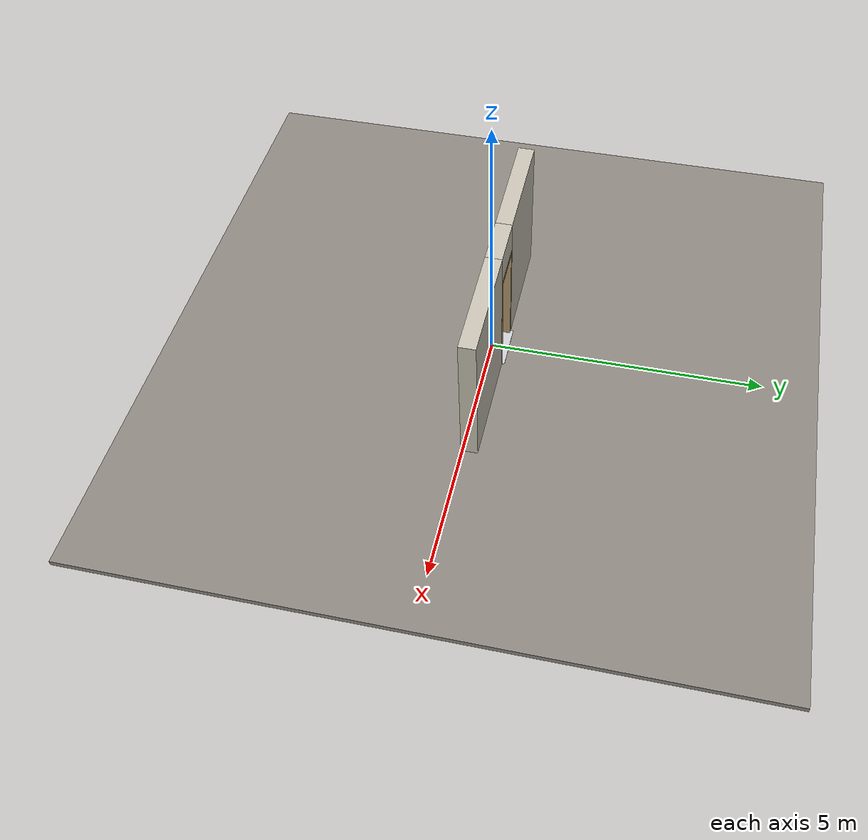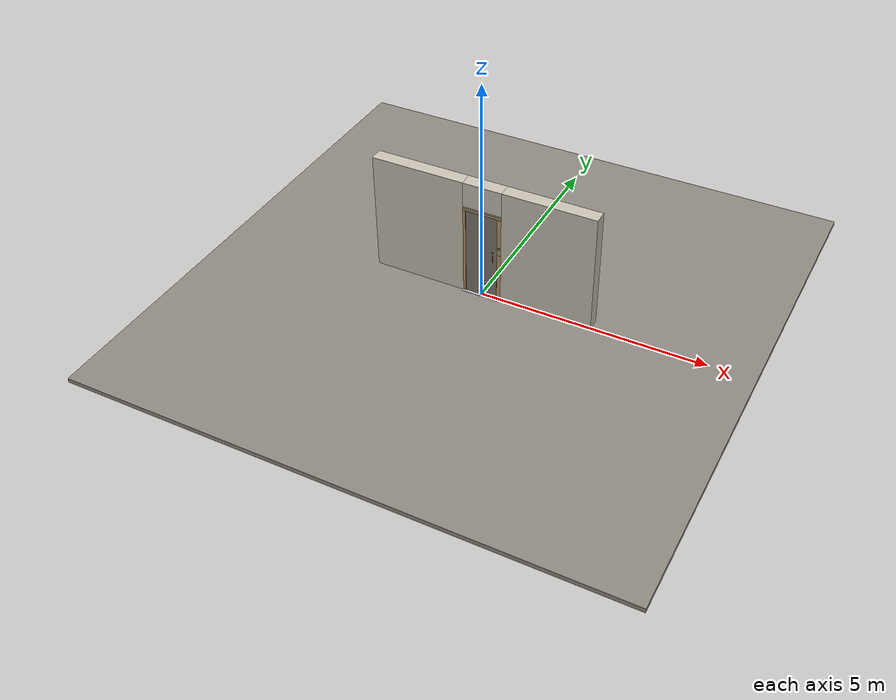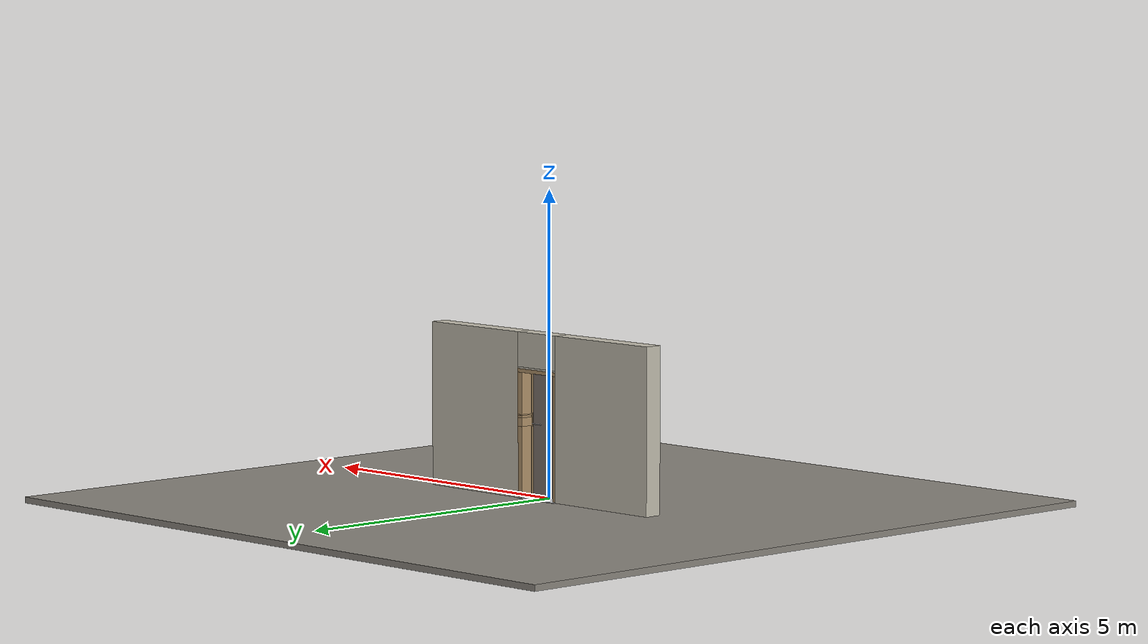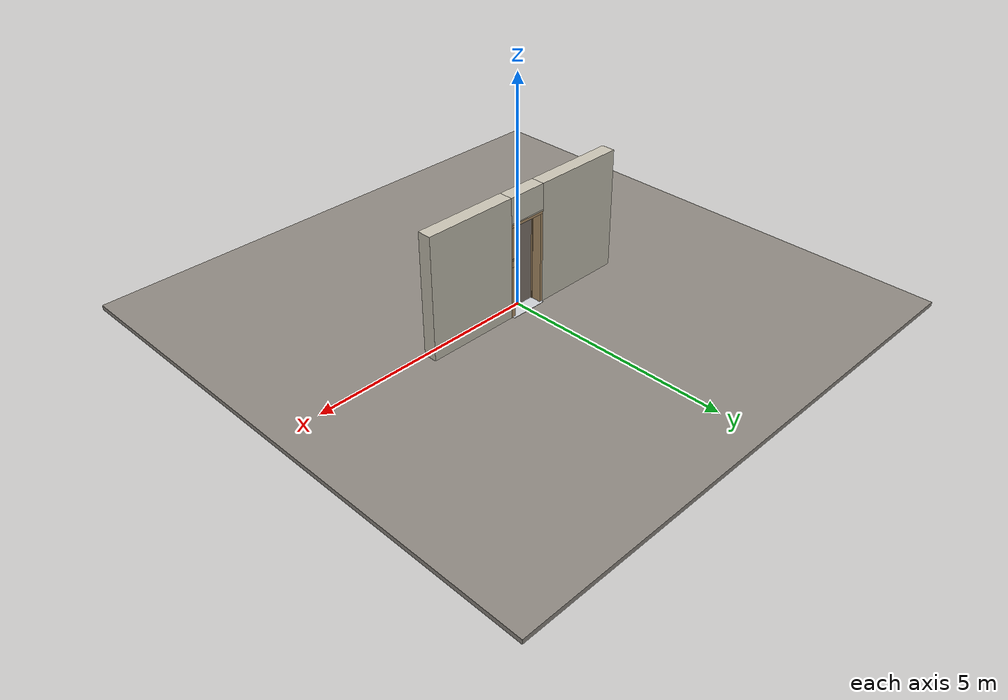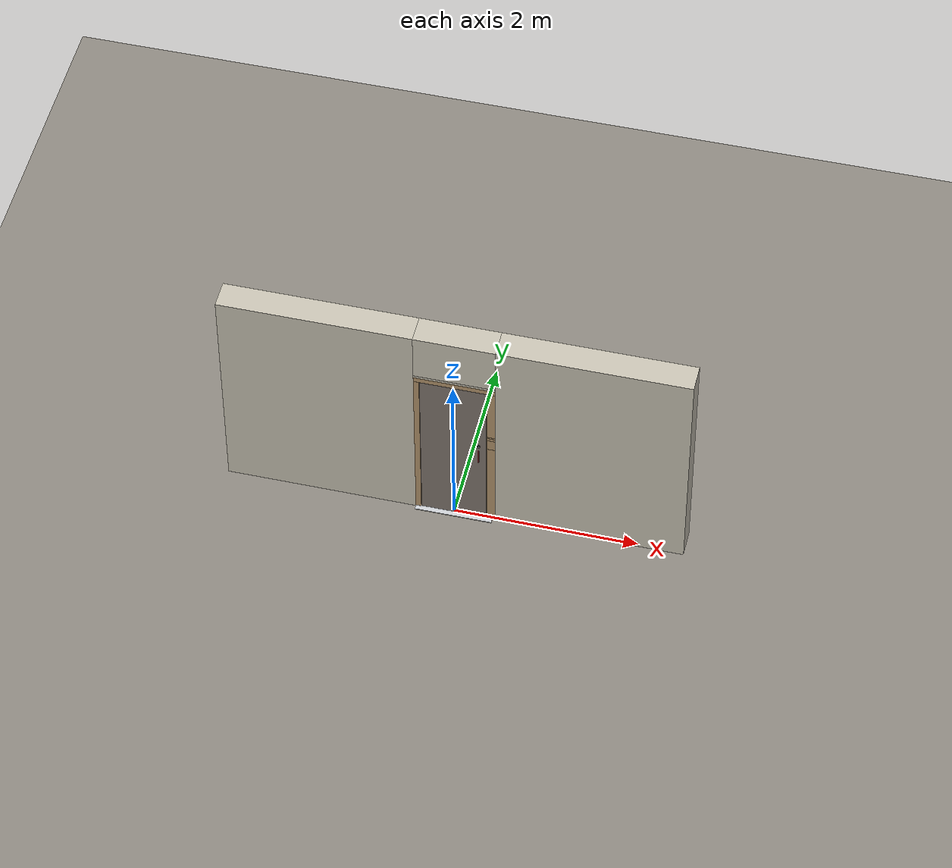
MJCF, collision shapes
<?xml version="1.0" ?>
<mujoco model="db0856_swing_single_minimal">
  <compiler angle="radian" meshdir="../../hardware" texturedir="../../textures" autolimits="true" inertiafromgeom="false"/>
  <option timestep="0.002" integrator="implicitfast" cone="elliptic" impratio="10" noslip_iterations="3">
    <flag multiccd="enable"/>
  </option>
  <size memory="16M"/>
  <default>
    <geom condim="4" solref="0.005 1" solimp="0.95 0.99 0.001"/>
    <joint solreflimit="0.005 1" solimplimit="0.95 0.99 0.001"/>
    <tendon solreflimit="0.005 1"/>
    <equality solref="0.002 1"/>
  </default>
  <visual>
    <headlight ambient="0.4 0.4 0.4" diffuse="0.7 0.7 0.7" specular="0.2 0.2 0.2"/>
    <quality shadowsize="4096"/>
    <map znear="0.01" zfar="60"/>
  </visual>
  <asset>
    <mesh name="thumb_latch_0073ea78ed" file="thumb_latch_0073ea78ed.obj"/>
    <material name="mat_floor" rgba="0.55 0.53 0.5 1" specular="0.2" shininess="0.15" reflectance="0"/>
    <material name="mat_wall" rgba="0.78 0.76 0.7 1" specular="0.2" shininess="0.1" reflectance="0"/>
    <material name="mat_leaf" rgba="0.5 0.46 0.425 1" specular="0.2" shininess="0.15" reflectance="0"/>
    <material name="mat_leaf_brace" rgba="0.45 0.414 0.383 1" specular="0.2" shininess="0.2" reflectance="0"/>
    <material name="mat_hinge" rgba="0.65 0.66 0.68 1" specular="0.74" shininess="0.5" reflectance="0.36"/>
    <material name="mat_op_wrought_iron" rgba="0.08 0.08 0.09 1" specular="0.56" shininess="0.25" reflectance="0.24"/>
    <material name="mat_op_brass" rgba="0.85 0.66 0.3 1" specular="0.8" shininess="0.75" reflectance="0.4"/>
    <material name="mat_frame" rgba="0.7 0.58 0.42 1" specular="0.2" shininess="0.5" reflectance="0"/>
    <material name="mat_seal" rgba="0.1 0.1 0.1 1" specular="0.2" shininess="0.1" reflectance="0"/>
    <material name="mat_threshold" rgba="0.8 0.81 0.83 1" specular="0.8" shininess="0.6" reflectance="0.4"/>
    <material name="mat_wreath" rgba="0.12 0.3 0.12 1" specular="0.2" shininess="0.05" reflectance="0"/>
    <material name="mat_wreath_hook" rgba="0.85 0.66 0.3 1" specular="0.8" shininess="0.75" reflectance="0.4"/>
    <texture name="skybox" type="skybox" builtin="gradient" rgb1="0.6 0.7 0.85" rgb2="0.9 0.92 0.95" width="256" height="256"/>
  </asset>
  <worldbody>
    <light name="sun" pos="1.5 -2.5 4" dir="-0.3 0.5 -0.8" directional="true" diffuse="0.8 0.8 0.8" specular="0.3 0.3 0.3" castshadow="true"/>
    <light name="fill" pos="-1.5 2.5 3" dir="0.3 -0.5 -0.7" directional="true" diffuse="0.35 0.35 0.4" castshadow="false"/>
    <camera name="robot_view" pos="0 -2.421187 1.734312" xyaxes="1 0 0 0 0.26963 0.962964" fovy="52"/>
    <camera name="far_view" pos="0 2.663187 1.734312" xyaxes="-1 0 0 0 -0.26963 0.962964" fovy="52"/>
    <camera name="iso" pos="1.932062 -2.014438 2.141063" xyaxes="0.741536 0.670913 0 -0.242917 0.268487 0.932151" fovy="46"/>
    <camera name="detail_handle" pos="0.4545 -0.857 1.33" xyaxes="0.97561 0.219512 0 -0.070934 0.315262 0.94635" fovy="38"/>
    <geom name="floor" type="box" size="6 6 0.05" pos="0 0 -0.05" material="mat_floor" group="0" contype="1" conaffinity="1" friction="0.8 0.005 0.0001" density="2400"/>
    <geom name="wall_left" type="box" size="1.04025 0.15 1.35" pos="-1.45975 0.121 1.35" material="mat_wall" group="0" contype="1" conaffinity="1" friction="0.6 0.005 0.0001" density="800"/>
    <geom name="wall_right" type="box" size="1.02525 0.15 1.35" pos="1.47475 0.121 1.35" material="mat_wall" group="0" contype="1" conaffinity="1" friction="0.6 0.005 0.0001" density="800"/>
    <geom name="wall_header" type="box" size="0.4345 0.15 0.2825" pos="0.015 0.121 2.4175" material="mat_wall" group="0" contype="1" conaffinity="1" friction="0.6 0.005 0.0001" density="800"/>
    <geom name="jamb_hinge" type="box" size="0.03 0.15 1.0225" pos="-0.3895 0.121 1.0225" material="mat_frame" group="0" contype="1" conaffinity="1" friction="0.6 0.005 0.0001" density="750"/>
    <geom name="strike_1235_wall_n" type="box" size="0.045 0.1135 0.07" pos="0.4045 0.1575 1.235" material="mat_frame" group="0" contype="1" conaffinity="1" friction="0.6 0.005 0.0001" density="750"/>
    <geom name="strike_1235_wall_p" type="box" size="0.045 0.0265 0.07" pos="0.4045 -0.0025 1.235" material="mat_frame" group="0" contype="1" conaffinity="1" friction="0.6 0.005 0.0001" density="750"/>
    <geom name="strike_1235_back" type="box" size="0.035 0.01 0.07" pos="0.4145 0.034 1.235" material="mat_frame" group="0" contype="1" conaffinity="1" friction="0.6 0.005 0.0001" density="750"/>
    <geom name="strike_1350_wall_n" type="box" size="0.045 0.1145 0.01" pos="0.4045 0.1565 1.35" material="mat_frame" group="0" contype="1" conaffinity="1" friction="0.6 0.005 0.0001" density="750"/>
    <geom name="strike_1350_wall_p" type="box" size="0.045 0.0275 0.01" pos="0.4045 -0.0015 1.35" material="mat_frame" group="0" contype="1" conaffinity="1" friction="0.6 0.005 0.0001" density="750"/>
    <geom name="strike_1350_back" type="box" size="0.024 0.008 0.01" pos="0.4255 0.034 1.35" material="mat_frame" group="0" contype="1" conaffinity="1" friction="0.6 0.005 0.0001" density="750"/>
    <geom name="jamb_strike_0" type="box" size="0.045 0.15 0.5825" pos="0.4045 0.121 0.5825" material="mat_frame" group="0" contype="1" conaffinity="1" friction="0.6 0.005 0.0001" density="750"/>
    <geom name="jamb_strike_1" type="box" size="0.045 0.15 0.0175" pos="0.4045 0.121 1.3225" material="mat_frame" group="0" contype="1" conaffinity="1" friction="0.6 0.005 0.0001" density="750"/>
    <geom name="jamb_strike_2" type="box" size="0.045 0.15 0.3425" pos="0.4045 0.121 1.7025" material="mat_frame" group="0" contype="1" conaffinity="1" friction="0.6 0.005 0.0001" density="750"/>
    <geom name="jamb_head" type="box" size="0.4345 0.15 0.03" pos="0.015 0.121 2.075" material="mat_frame" group="0" contype="1" conaffinity="1" friction="0.6 0.005 0.0001" density="750"/>
    <geom name="head_stud" type="box" size="0.4345 0.15 0.015" pos="0.015 0.121 2.12" material="mat_wall" group="0" contype="1" conaffinity="1" friction="0.6 0.005 0.0001" density="500"/>
    <geom name="stop_hinge" type="box" size="0.0055 0.016 1.0225" pos="-0.354 0.0385 1.0225" material="mat_frame" group="0" contype="1" conaffinity="1" friction="0.6 0.005 0.0001" density="750"/>
    <geom name="stop_strike" type="box" size="0.0055 0.016 0.5765" pos="0.354 0.0385 0.5765" material="mat_frame" group="0" contype="1" conaffinity="1" friction="0.6 0.005 0.0001" density="750"/>
    <geom name="stop_strike_1" type="box" size="0.0055 0.016 0.0055" pos="0.354 0.0385 1.3225" material="mat_frame" group="0" contype="1" conaffinity="1" friction="0.6 0.005 0.0001" density="750"/>
    <geom name="stop_strike_2" type="box" size="0.0055 0.016 0.3365" pos="0.354 0.0385 1.7085" material="mat_frame" group="0" contype="1" conaffinity="1" friction="0.6 0.005 0.0001" density="750"/>
    <geom name="stop_head" type="box" size="0.3595 0.016 0.0055" pos="0 0.0385 2.0395" material="mat_frame" group="0" contype="1" conaffinity="1" friction="0.6 0.005 0.0001" density="750"/>
    <geom name="threshold" type="box" size="0.4195 0.2 0.004" pos="0 0.121 0.004" material="mat_threshold" group="0" contype="1" conaffinity="1" friction="0.6 0.005 0.0001" density="2700"/>
    <site name="approach_point" pos="0 -1.5 0" quat="1 0 0 0" size="0.05" rgba="0.2 0.9 0.2 0.5" group="4"/>
    <site name="goal_point" pos="0 1.5 0" quat="1 0 0 0" size="0.05" rgba="0.2 0.9 0.2 0.5" group="4"/>
    <site name="door_plane_center" pos="0 0 1.0225" quat="1 0 0 0" size="0.02" rgba="0.2 0.9 0.2 0.5" group="4"/>
    <body name="leaf" pos="-0.3595 0 0">
      <inertial pos="0.365529 -0.001068 1.025638" mass="32.772914" quat="0.501802 0.498486 -0.501547 0.498155" diaginertia="1.414069125 11.000185864 12.400830694"/>
      <joint name="leaf_hinge" type="hinge" axis="0 0 -1" pos="0.003 -0.029 0" limited="true" range="0 1.396263" solreflimit="0.02 1" damping="0.143782" frictionloss="5.712132" armature="0.02"/>
      <geom name="leaf_slab" type="box" size="0.3555 0.022 1.016" pos="0.3585 0 1.025" material="mat_leaf" group="0" contype="1" conaffinity="1" friction="0.45 0.005 0.0001" density="1"/>
      <geom name="leaf_suffolk_grip" type="mesh" mesh="thumb_latch_0073ea78ed" pos="0.634 -0.022 1.05" quat="0.707107 0.707107 0 0" material="mat_op_wrought_iron" group="1" contype="0" conaffinity="0" density="7000"/>
      <geom name="leaf_suffolk_grip_col" type="capsule" size="0.008 0.09" pos="0.634 -0.057 1.05" material="mat_op_wrought_iron" group="3" contype="1" conaffinity="1" rgba="0.8 0.3 0.3 0.25" friction="0.7 0.01 0.0001" density="7000"/>
      <site name="leaf_grip_n" pos="0.634 -0.057 1.05" quat="1 0 0 0" size="0.012" rgba="0.2 0.9 0.2 0.5" group="4"/>
      <site name="leaf_edge_mid" pos="0.714 0 1.016" quat="1 0 0 0" size="0.02" rgba="0.2 0.9 0.2 0.5" group="4"/>
      <body name="leaf_thumb" pos="0.634 -0.022 1.195">
        <inertial pos="0 -0.02 0" mass="0.03528" quat="1 0 0 0" diaginertia="0.000002411 0.000002752 0.000004951"/>
        <joint name="leaf_thumb_hinge" type="hinge" axis="1 0 0" limited="true" range="0 0.3" damping="0.155346" frictionloss="0.032" stiffness="0.6" springref="-0.5" armature="0.01"/>
        <geom name="leaf_thumb_geom" type="box" size="0.015 0.014 0.003" pos="0 -0.02 0" material="mat_op_wrought_iron" group="0" contype="1" conaffinity="1" friction="0.6 0.005 0.0001" density="7000"/>
        <site name="leaf_thumb_push" pos="0 -0.024 0.005" quat="1 0 0 0" size="0.01" rgba="0.2 0.9 0.2 0.5" group="4"/>
      </body>
      <body name="leaf_latch_bar" pos="0.514 0.034 1.19">
        <inertial pos="0.106 0 0" mass="0.25" quat="0 0 0.707107 0.707107" diaginertia="0.000004465 0.000904065 0.000904065"/>
        <joint name="leaf_latch_bar_hinge" type="hinge" axis="0 -1 0" limited="true" range="0 0.6" damping="0.01" frictionloss="0.01" armature="0.005"/>
        <geom name="leaf_latch_bar_geom" type="capsule" size="0.006 0.1" pos="0.106 0 0" quat="0.707107 0 0.707107 0" material="mat_op_wrought_iron" group="0" contype="1" conaffinity="1" friction="0.6 0.005 0.0001" density="7850"/>
      </body>
    </body>
  </worldbody>
  <equality>
    <joint name="leaf_thumb_couple" joint1="leaf_latch_bar_hinge" joint2="leaf_thumb_hinge" polycoef="0 2 0 0 0" active="true"/>
  </equality>
  <sensor>
    <jointpos name="leaf_hinge_pos" joint="leaf_hinge"/>
    <jointvel name="leaf_hinge_vel" joint="leaf_hinge"/>
    <jointpos name="leaf_thumb_hinge_pos" joint="leaf_thumb_hinge"/>
    <jointvel name="leaf_thumb_hinge_vel" joint="leaf_thumb_hinge"/>
    <jointpos name="leaf_latch_bar_hinge_pos" joint="leaf_latch_bar_hinge"/>
    <jointvel name="leaf_latch_bar_hinge_vel" joint="leaf_latch_bar_hinge"/>
  </sensor>
</mujoco>
